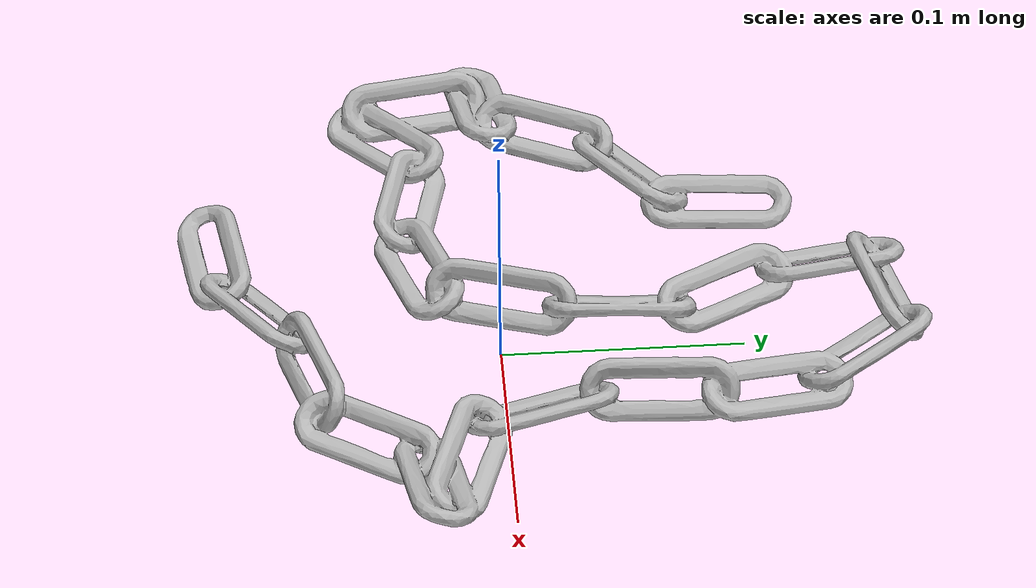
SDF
<?xml version='1.0'?>
<sdf version="1.4">
  <model name="chain">
    <static>false</static>
    <link name="link">
      <inertial>
        <pose>-0.034274940120650695 0.018175325943306266 0.00901024761193737 1.0572172745720854 -1.5612055829470524 -3.0516691459643424</pose>
        <mass>0.00011189363696047932</mass>
        <inertia>
          <ixx>1.3307905578269508e-06</ixx>
          <ixy>3.425425713206781e-23</ixy>
          <ixz>-4.053575546117561e-24</ixz>
          <iyy>7.338900067550518e-07</iyy>
          <iyz>9.384417255162327e-24</iyz>
          <izz>6.025740314983348e-07</izz>
        </inertia>
      </inertial>
      <collision name="collision">
        <geometry>
          <mesh>
            <!-- Use a downsampled mesh for collisions -->
            <uri>model://059_chain/google_16k/059_chain.obj</uri>
            </mesh>
        </geometry>
        <surface>
          <friction>
            <ode>
              <mu>0.9</mu>
              <mu2>0.9</mu2>
            </ode>
          </friction>
          <contact>
            <ode>
              <kp>1000000000000.0</kp>
              <kd>1</kd>
              <min_depth>0.0001</min_depth>
              <max_vel>0.01</max_vel>
            </ode>
          </contact>
          <bounce>
            <restitution_coefficient>0.1</restitution_coefficient>
            <threshold>1000.0</threshold>
          </bounce>
        </surface>
      </collision>
      <visual name="visual">
        <geometry>
          <mesh>
            <uri>model://059_chain/google_16k/059_chain.dae</uri>
            </mesh>
        </geometry>
      </visual>
    </link>
  </model>
</sdf>
